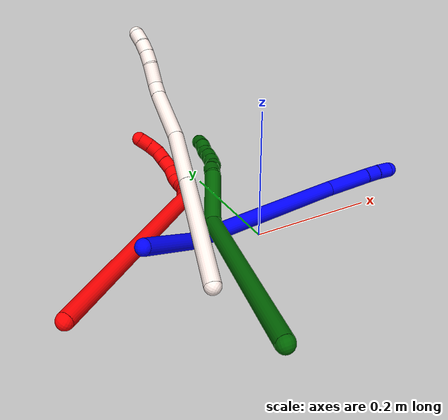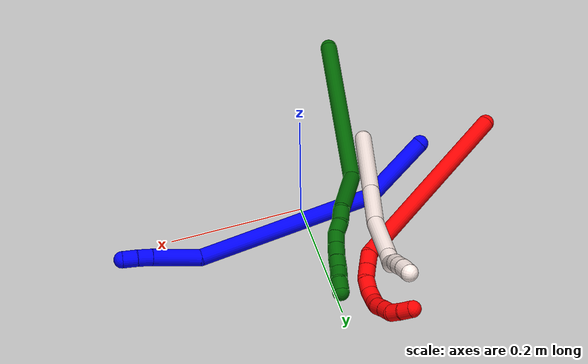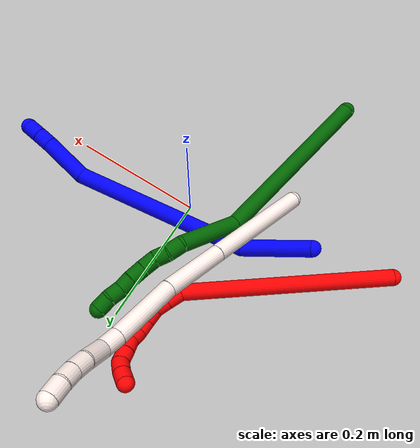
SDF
<sdf version="1.7">
 <world name="default">
  <model name="1">
   <static>0</static>
   <link name="1">
    <collision name="collision-cylinder-e_1_1_4">
     <pose>0.047607 0.022094 0.013996 -1.00615 1.06844 -0.629468</pose>
     <geometry><cylinder><radius>0.0125</radius><length>0.108637</length></cylinder></geometry>
     <surface>
      <friction><ode><mu>1.16</mu><mu2>1.16</mu2><slip1>0</slip1><slip2>0</slip2></ode></friction>
      <contact><ode><kp>1e+06</kp><kd>1</kd><max_vel>0</max_vel><min_depth>0.001</min_depth></ode></contact>
     </surface>
    </collision>
    <visual name="visual-cylinder-e_1_1_4">
     <pose>0.047607 0.022094 0.013996 -1.00615 1.06844 -0.629468</pose>
     <geometry><cylinder><radius>0.0125</radius><length>0.108637</length></cylinder></geometry>
     <material><ambient>0 0 1 1</ambient></material>
    </visual>
    <collision name="collision-cylinder-e_2_4_5">
     <pose>0.231479 0.05717 0.013782 -2.40131 1.43048 -2.30141</pose>
     <geometry><cylinder><radius>0.0125</radius><length>0.275234</length></cylinder></geometry>
     <surface>
      <friction><ode><mu>1.16</mu><mu2>1.16</mu2><slip1>0</slip1><slip2>0</slip2></ode></friction>
      <contact><ode><kp>1e+06</kp><kd>1</kd><max_vel>0</max_vel><min_depth>0.001</min_depth></ode></contact>
     </surface>
    </collision>
    <visual name="visual-cylinder-e_2_4_5">
     <pose>0.231479 0.05717 0.013782 -2.40131 1.43048 -2.30141</pose>
     <geometry><cylinder><radius>0.0125</radius><length>0.275234</length></cylinder></geometry>
     <material><ambient>0 0 1 1</ambient></material>
    </visual>
    <collision name="collision-cylinder-e_3_5_6">
     <pose>0.400333 0.069158 -0.015566 3.07604 1.13511 3.03882</pose>
     <geometry><cylinder><radius>0.0125</radius><length>0.071896</length></cylinder></geometry>
     <surface>
      <friction><ode><mu>1.16</mu><mu2>1.16</mu2><slip1>0</slip1><slip2>0</slip2></ode></friction>
      <contact><ode><kp>1e+06</kp><kd>1</kd><max_vel>0</max_vel><min_depth>0.001</min_depth></ode></contact>
     </surface>
    </collision>
    <visual name="visual-cylinder-e_3_5_6">
     <pose>0.400333 0.069158 -0.015566 3.07604 1.13511 3.03882</pose>
     <geometry><cylinder><radius>0.0125</radius><length>0.071896</length></cylinder></geometry>
     <material><ambient>0 0 1 1</ambient></material>
    </visual>
    <collision name="collision-cylinder-e_4_6_7">
     <pose>0.443159 0.068278 -0.03479 -3.11373 1.19096 -3.10046</pose>
     <geometry><cylinder><radius>0.0125</radius><length>0.022044</length></cylinder></geometry>
     <surface>
      <friction><ode><mu>1.16</mu><mu2>1.16</mu2><slip1>0</slip1><slip2>0</slip2></ode></friction>
      <contact><ode><kp>1e+06</kp><kd>1</kd><max_vel>0</max_vel><min_depth>0.001</min_depth></ode></contact>
     </surface>
    </collision>
    <visual name="visual-cylinder-e_4_6_7">
     <pose>0.443159 0.068278 -0.03479 -3.11373 1.19096 -3.10046</pose>
     <geometry><cylinder><radius>0.0125</radius><length>0.022044</length></cylinder></geometry>
     <material><ambient>0 0 1 1</ambient></material>
    </visual>
    <collision name="collision-cylinder-e_5_7_2">
     <pose>0.463685 0.069507 -0.042871 -2.86958 1.18755 -2.74155</pose>
     <geometry><cylinder><radius>0.0125</radius><length>0.02219</length></cylinder></geometry>
     <surface>
      <friction><ode><mu>1.16</mu><mu2>1.16</mu2><slip1>0</slip1><slip2>0</slip2></ode></friction>
      <contact><ode><kp>1e+06</kp><kd>1</kd><max_vel>0</max_vel><min_depth>0.001</min_depth></ode></contact>
     </surface>
    </collision>
    <visual name="visual-cylinder-e_5_7_2">
     <pose>0.463685 0.069507 -0.042871 -2.86958 1.18755 -2.74155</pose>
     <geometry><cylinder><radius>0.0125</radius><length>0.02219</length></cylinder></geometry>
     <material><ambient>0 0 1 1</ambient></material>
    </visual>
    <collision name="collision-sphere-2">
     <pose>0.473975 0.070621 -0.046867 0 -0 0</pose>
     <geometry><sphere><radius>0.0125</radius></sphere></geometry>
     <surface>
      <friction><ode><mu>1.16</mu><mu2>1.16</mu2><slip1>0</slip1><slip2>0</slip2></ode></friction>
      <contact><ode><kp>1e+06</kp><kd>1</kd><max_vel>0</max_vel><min_depth>0.001</min_depth></ode></contact>
     </surface>
    </collision>
    <visual name="visual-sphere-2">
     <pose>0.473975 0.070621 -0.046867 0 -0 0</pose>
     <geometry><sphere><radius>0.0125</radius></sphere></geometry>
     <material><ambient>0 0 1 1</ambient></material>
    </visual>
    <collision name="collision-sphere-7">
     <pose>0.453395 0.068392 -0.038875 0 -0 0</pose>
     <geometry><sphere><radius>0.0125</radius></sphere></geometry>
     <surface>
      <friction><ode><mu>1.16</mu><mu2>1.16</mu2><slip1>0</slip1><slip2>0</slip2></ode></friction>
      <contact><ode><kp>1e+06</kp><kd>1</kd><max_vel>0</max_vel><min_depth>0.001</min_depth></ode></contact>
     </surface>
    </collision>
    <visual name="visual-sphere-7">
     <pose>0.453395 0.068392 -0.038875 0 -0 0</pose>
     <geometry><sphere><radius>0.0125</radius></sphere></geometry>
     <material><ambient>0 0 1 1</ambient></material>
    </visual>
    <collision name="collision-sphere-6">
     <pose>0.432923 0.068164 -0.030705 0 -0 0</pose>
     <geometry><sphere><radius>0.0125</radius></sphere></geometry>
     <surface>
      <friction><ode><mu>1.16</mu><mu2>1.16</mu2><slip1>0</slip1><slip2>0</slip2></ode></friction>
      <contact><ode><kp>1e+06</kp><kd>1</kd><max_vel>0</max_vel><min_depth>0.001</min_depth></ode></contact>
     </surface>
    </collision>
    <visual name="visual-sphere-6">
     <pose>0.432923 0.068164 -0.030705 0 -0 0</pose>
     <geometry><sphere><radius>0.0125</radius></sphere></geometry>
     <material><ambient>0 0 1 1</ambient></material>
    </visual>
    <collision name="collision-sphere-5">
     <pose>0.367744 0.070152 -0.000427 0 -0 0</pose>
     <geometry><sphere><radius>0.0125</radius></sphere></geometry>
     <surface>
      <friction><ode><mu>1.16</mu><mu2>1.16</mu2><slip1>0</slip1><slip2>0</slip2></ode></friction>
      <contact><ode><kp>1e+06</kp><kd>1</kd><max_vel>0</max_vel><min_depth>0.001</min_depth></ode></contact>
     </surface>
    </collision>
    <visual name="visual-sphere-5">
     <pose>0.367744 0.070152 -0.000427 0 -0 0</pose>
     <geometry><sphere><radius>0.0125</radius></sphere></geometry>
     <material><ambient>0 0 1 1</ambient></material>
    </visual>
    <collision name="collision-sphere-1">
     <geometry><sphere><radius>0.0125</radius></sphere></geometry>
     <surface>
      <friction><ode><mu>1.16</mu><mu2>1.16</mu2><slip1>0</slip1><slip2>0</slip2></ode></friction>
      <contact><ode><kp>1e+06</kp><kd>1</kd><max_vel>0</max_vel><min_depth>0.001</min_depth></ode></contact>
     </surface>
    </collision>
    <visual name="visual-sphere-1">
     <geometry><sphere><radius>0.0125</radius></sphere></geometry>
     <material><ambient>0 0 1 1</ambient></material>
    </visual>
    <collision name="collision-sphere-4">
     <pose>0.095215 0.044189 0.027991 0 -0 0</pose>
     <geometry><sphere><radius>0.0125</radius></sphere></geometry>
     <surface>
      <friction><ode><mu>1.16</mu><mu2>1.16</mu2><slip1>0</slip1><slip2>0</slip2></ode></friction>
      <contact><ode><kp>1e+06</kp><kd>1</kd><max_vel>0</max_vel><min_depth>0.001</min_depth></ode></contact>
     </surface>
    </collision>
    <visual name="visual-sphere-4">
     <pose>0.095215 0.044189 0.027991 0 -0 0</pose>
     <geometry><sphere><radius>0.0125</radius></sphere></geometry>
     <material><ambient>0 0 1 1</ambient></material>
    </visual>
    <inertial>
     <pose>0.235446 0.05231 0.004953 0 -0 0</pose>
     <mass>0.5</mass>
     <inertia>
      <ixx>-0.000311</ixx>
      <ixy>0</ixy>
      <ixz>0</ixz>
      <iyy>0.001658</iyy>
      <iyz>0</iyz>
      <izz>-0.002075</izz>
     </inertia>
    </inertial>
   </link>
   <pose>-0.194495 -0.024277 0.05401 -1.79337 -0.069787 0.243586</pose>
  </model>
  <model name="2">
   <static>0</static>
   <link name="2">
    <collision name="collision-cylinder-e_1_1_4">
     <pose>0.089903 0.109008 0.067376 -1.01719 0.611769 -0.348548</pose>
     <geometry><cylinder><radius>0.0125</radius><length>0.31308</length></cylinder></geometry>
     <surface>
      <friction><ode><mu>1.16</mu><mu2>1.16</mu2><slip1>0</slip1><slip2>0</slip2></ode></friction>
      <contact><ode><kp>1e+06</kp><kd>1</kd><max_vel>0</max_vel><min_depth>0.001</min_depth></ode></contact>
     </surface>
    </collision>
    <visual name="visual-cylinder-e_1_1_4">
     <pose>0.089903 0.109008 0.067376 -1.01719 0.611769 -0.348548</pose>
     <geometry><cylinder><radius>0.0125</radius><length>0.31308</length></cylinder></geometry>
     <material><ambient>1 0 0 1</ambient></material>
    </visual>
    <collision name="collision-cylinder-e_2_4_5">
     <pose>0.183748 0.229125 0.135699 -1.48568 0.339775 -0.312487</pose>
     <geometry><cylinder><radius>0.0125</radius><length>0.023652</length></cylinder></geometry>
     <surface>
      <friction><ode><mu>1.16</mu><mu2>1.16</mu2><slip1>0</slip1><slip2>0</slip2></ode></friction>
      <contact><ode><kp>1e+06</kp><kd>1</kd><max_vel>0</max_vel><min_depth>0.001</min_depth></ode></contact>
     </surface>
    </collision>
    <visual name="visual-cylinder-e_2_4_5">
     <pose>0.183748 0.229125 0.135699 -1.48568 0.339775 -0.312487</pose>
     <geometry><cylinder><radius>0.0125</radius><length>0.023652</length></cylinder></geometry>
     <material><ambient>1 0 0 1</ambient></material>
    </visual>
    <collision name="collision-cylinder-e_3_5_6">
     <pose>0.190829 0.249921 0.137514 -1.4816 0.312208 -0.285912</pose>
     <geometry><cylinder><radius>0.0125</radius><length>0.020439</length></cylinder></geometry>
     <surface>
      <friction><ode><mu>1.16</mu><mu2>1.16</mu2><slip1>0</slip1><slip2>0</slip2></ode></friction>
      <contact><ode><kp>1e+06</kp><kd>1</kd><max_vel>0</max_vel><min_depth>0.001</min_depth></ode></contact>
     </surface>
    </collision>
    <visual name="visual-cylinder-e_3_5_6">
     <pose>0.190829 0.249921 0.137514 -1.4816 0.312208 -0.285912</pose>
     <geometry><cylinder><radius>0.0125</radius><length>0.020439</length></cylinder></geometry>
     <material><ambient>1 0 0 1</ambient></material>
    </visual>
    <collision name="collision-cylinder-e_4_6_7">
     <pose>0.195257 0.269668 0.136068 -1.79666 0.124285 -0.155967</pose>
     <geometry><cylinder><radius>0.0125</radius><length>0.020804</length></cylinder></geometry>
     <surface>
      <friction><ode><mu>1.16</mu><mu2>1.16</mu2><slip1>0</slip1><slip2>0</slip2></ode></friction>
      <contact><ode><kp>1e+06</kp><kd>1</kd><max_vel>0</max_vel><min_depth>0.001</min_depth></ode></contact>
     </surface>
    </collision>
    <visual name="visual-cylinder-e_4_6_7">
     <pose>0.195257 0.269668 0.136068 -1.79666 0.124285 -0.155967</pose>
     <geometry><cylinder><radius>0.0125</radius><length>0.020804</length></cylinder></geometry>
     <material><ambient>1 0 0 1</ambient></material>
    </visual>
    <collision name="collision-cylinder-e_5_7_8">
     <pose>0.194726 0.290175 0.133896 -1.55744 -0.172497 0.17022</pose>
     <geometry><cylinder><radius>0.0125</radius><length>0.021211</length></cylinder></geometry>
     <surface>
      <friction><ode><mu>1.16</mu><mu2>1.16</mu2><slip1>0</slip1><slip2>0</slip2></ode></friction>
      <contact><ode><kp>1e+06</kp><kd>1</kd><max_vel>0</max_vel><min_depth>0.001</min_depth></ode></contact>
     </surface>
    </collision>
    <visual name="visual-cylinder-e_5_7_8">
     <pose>0.194726 0.290175 0.133896 -1.55744 -0.172497 0.17022</pose>
     <geometry><cylinder><radius>0.0125</radius><length>0.021211</length></cylinder></geometry>
     <material><ambient>1 0 0 1</ambient></material>
    </visual>
    <collision name="collision-cylinder-e_6_8_9">
     <pose>0.189523 0.309434 0.137608 -1.18575 -0.341835 0.231533</pose>
     <geometry><cylinder><radius>0.0125</radius><length>0.020186</length></cylinder></geometry>
     <surface>
      <friction><ode><mu>1.16</mu><mu2>1.16</mu2><slip1>0</slip1><slip2>0</slip2></ode></friction>
      <contact><ode><kp>1e+06</kp><kd>1</kd><max_vel>0</max_vel><min_depth>0.001</min_depth></ode></contact>
     </surface>
    </collision>
    <visual name="visual-cylinder-e_6_8_9">
     <pose>0.189523 0.309434 0.137608 -1.18575 -0.341835 0.231533</pose>
     <geometry><cylinder><radius>0.0125</radius><length>0.020186</length></cylinder></geometry>
     <material><ambient>1 0 0 1</ambient></material>
    </visual>
    <collision name="collision-cylinder-e_7_9_10">
     <pose>0.180032 0.326305 0.143135 -1.33265 -0.634855 0.505598</pose>
     <geometry><cylinder><radius>0.0125</radius><length>0.020598</length></cylinder></geometry>
     <surface>
      <friction><ode><mu>1.16</mu><mu2>1.16</mu2><slip1>0</slip1><slip2>0</slip2></ode></friction>
      <contact><ode><kp>1e+06</kp><kd>1</kd><max_vel>0</max_vel><min_depth>0.001</min_depth></ode></contact>
     </surface>
    </collision>
    <visual name="visual-cylinder-e_7_9_10">
     <pose>0.180032 0.326305 0.143135 -1.33265 -0.634855 0.505598</pose>
     <geometry><cylinder><radius>0.0125</radius><length>0.020598</length></cylinder></geometry>
     <material><ambient>1 0 0 1</ambient></material>
    </visual>
    <collision name="collision-cylinder-e_8_10_11">
     <pose>0.168572 0.34261 0.146968 -1.34709 -0.564198 0.454595</pose>
     <geometry><cylinder><radius>0.0125</radius><length>0.020018</length></cylinder></geometry>
     <surface>
      <friction><ode><mu>1.16</mu><mu2>1.16</mu2><slip1>0</slip1><slip2>0</slip2></ode></friction>
      <contact><ode><kp>1e+06</kp><kd>1</kd><max_vel>0</max_vel><min_depth>0.001</min_depth></ode></contact>
     </surface>
    </collision>
    <visual name="visual-cylinder-e_8_10_11">
     <pose>0.168572 0.34261 0.146968 -1.34709 -0.564198 0.454595</pose>
     <geometry><cylinder><radius>0.0125</radius><length>0.020018</length></cylinder></geometry>
     <material><ambient>1 0 0 1</ambient></material>
    </visual>
    <collision name="collision-cylinder-e_9_11_12">
     <pose>0.154483 0.355695 0.14942 -1.45219 -1.0621 0.961392</pose>
     <geometry><cylinder><radius>0.0125</radius><length>0.020007</length></cylinder></geometry>
     <surface>
      <friction><ode><mu>1.16</mu><mu2>1.16</mu2><slip1>0</slip1><slip2>0</slip2></ode></friction>
      <contact><ode><kp>1e+06</kp><kd>1</kd><max_vel>0</max_vel><min_depth>0.001</min_depth></ode></contact>
     </surface>
    </collision>
    <visual name="visual-cylinder-e_9_11_12">
     <pose>0.154483 0.355695 0.14942 -1.45219 -1.0621 0.961392</pose>
     <geometry><cylinder><radius>0.0125</radius><length>0.020007</length></cylinder></geometry>
     <material><ambient>1 0 0 1</ambient></material>
    </visual>
    <collision name="collision-cylinder-e_10_12_2">
     <pose>0.136498 0.36434 0.149811 -1.61971 -1.17988 1.22553</pose>
     <geometry><cylinder><radius>0.0125</radius><length>0.020006</length></cylinder></geometry>
     <surface>
      <friction><ode><mu>1.16</mu><mu2>1.16</mu2><slip1>0</slip1><slip2>0</slip2></ode></friction>
      <contact><ode><kp>1e+06</kp><kd>1</kd><max_vel>0</max_vel><min_depth>0.001</min_depth></ode></contact>
     </surface>
    </collision>
    <visual name="visual-cylinder-e_10_12_2">
     <pose>0.136498 0.36434 0.149811 -1.61971 -1.17988 1.22553</pose>
     <geometry><cylinder><radius>0.0125</radius><length>0.020006</length></cylinder></geometry>
     <material><ambient>1 0 0 1</ambient></material>
    </visual>
    <collision name="collision-sphere-2">
     <pose>0.12725 0.368147 0.149624 0 -0 0</pose>
     <geometry><sphere><radius>0.0125</radius></sphere></geometry>
     <surface>
      <friction><ode><mu>1.16</mu><mu2>1.16</mu2><slip1>0</slip1><slip2>0</slip2></ode></friction>
      <contact><ode><kp>1e+06</kp><kd>1</kd><max_vel>0</max_vel><min_depth>0.001</min_depth></ode></contact>
     </surface>
    </collision>
    <visual name="visual-sphere-2">
     <pose>0.12725 0.368147 0.149624 0 -0 0</pose>
     <geometry><sphere><radius>0.0125</radius></sphere></geometry>
     <material><ambient>1 0 0 1</ambient></material>
    </visual>
    <collision name="collision-sphere-12">
     <pose>0.145746 0.360533 0.149997 0 -0 0</pose>
     <geometry><sphere><radius>0.0125</radius></sphere></geometry>
     <surface>
      <friction><ode><mu>1.16</mu><mu2>1.16</mu2><slip1>0</slip1><slip2>0</slip2></ode></friction>
      <contact><ode><kp>1e+06</kp><kd>1</kd><max_vel>0</max_vel><min_depth>0.001</min_depth></ode></contact>
     </surface>
    </collision>
    <visual name="visual-sphere-12">
     <pose>0.145746 0.360533 0.149997 0 -0 0</pose>
     <geometry><sphere><radius>0.0125</radius></sphere></geometry>
     <material><ambient>1 0 0 1</ambient></material>
    </visual>
    <collision name="collision-sphere-11">
     <pose>0.163219 0.350857 0.148844 0 -0 0</pose>
     <geometry><sphere><radius>0.0125</radius></sphere></geometry>
     <surface>
      <friction><ode><mu>1.16</mu><mu2>1.16</mu2><slip1>0</slip1><slip2>0</slip2></ode></friction>
      <contact><ode><kp>1e+06</kp><kd>1</kd><max_vel>0</max_vel><min_depth>0.001</min_depth></ode></contact>
     </surface>
    </collision>
    <visual name="visual-sphere-11">
     <pose>0.163219 0.350857 0.148844 0 -0 0</pose>
     <geometry><sphere><radius>0.0125</radius></sphere></geometry>
     <material><ambient>1 0 0 1</ambient></material>
    </visual>
    <collision name="collision-sphere-10">
     <pose>0.173924 0.334363 0.145091 0 -0 0</pose>
     <geometry><sphere><radius>0.0125</radius></sphere></geometry>
     <surface>
      <friction><ode><mu>1.16</mu><mu2>1.16</mu2><slip1>0</slip1><slip2>0</slip2></ode></friction>
      <contact><ode><kp>1e+06</kp><kd>1</kd><max_vel>0</max_vel><min_depth>0.001</min_depth></ode></contact>
     </surface>
    </collision>
    <visual name="visual-sphere-10">
     <pose>0.173924 0.334363 0.145091 0 -0 0</pose>
     <geometry><sphere><radius>0.0125</radius></sphere></geometry>
     <material><ambient>1 0 0 1</ambient></material>
    </visual>
    <collision name="collision-sphere-9">
     <pose>0.186139 0.318247 0.141179 0 -0 0</pose>
     <geometry><sphere><radius>0.0125</radius></sphere></geometry>
     <surface>
      <friction><ode><mu>1.16</mu><mu2>1.16</mu2><slip1>0</slip1><slip2>0</slip2></ode></friction>
      <contact><ode><kp>1e+06</kp><kd>1</kd><max_vel>0</max_vel><min_depth>0.001</min_depth></ode></contact>
     </surface>
    </collision>
    <visual name="visual-sphere-9">
     <pose>0.186139 0.318247 0.141179 0 -0 0</pose>
     <geometry><sphere><radius>0.0125</radius></sphere></geometry>
     <material><ambient>1 0 0 1</ambient></material>
    </visual>
    <collision name="collision-sphere-4">
     <pose>0.179807 0.218015 0.134752 0 -0 0</pose>
     <geometry><sphere><radius>0.0125</radius></sphere></geometry>
     <surface>
      <friction><ode><mu>1.16</mu><mu2>1.16</mu2><slip1>0</slip1><slip2>0</slip2></ode></friction>
      <contact><ode><kp>1e+06</kp><kd>1</kd><max_vel>0</max_vel><min_depth>0.001</min_depth></ode></contact>
     </surface>
    </collision>
    <visual name="visual-sphere-4">
     <pose>0.179807 0.218015 0.134752 0 -0 0</pose>
     <geometry><sphere><radius>0.0125</radius></sphere></geometry>
     <material><ambient>1 0 0 1</ambient></material>
    </visual>
    <collision name="collision-sphere-1">
     <geometry><sphere><radius>0.0125</radius></sphere></geometry>
     <surface>
      <friction><ode><mu>1.16</mu><mu2>1.16</mu2><slip1>0</slip1><slip2>0</slip2></ode></friction>
      <contact><ode><kp>1e+06</kp><kd>1</kd><max_vel>0</max_vel><min_depth>0.001</min_depth></ode></contact>
     </surface>
    </collision>
    <visual name="visual-sphere-1">
     <geometry><sphere><radius>0.0125</radius></sphere></geometry>
     <material><ambient>1 0 0 1</ambient></material>
    </visual>
    <collision name="collision-sphere-8">
     <pose>0.192906 0.300622 0.134036 0 -0 0</pose>
     <geometry><sphere><radius>0.0125</radius></sphere></geometry>
     <surface>
      <friction><ode><mu>1.16</mu><mu2>1.16</mu2><slip1>0</slip1><slip2>0</slip2></ode></friction>
      <contact><ode><kp>1e+06</kp><kd>1</kd><max_vel>0</max_vel><min_depth>0.001</min_depth></ode></contact>
     </surface>
    </collision>
    <visual name="visual-sphere-8">
     <pose>0.192906 0.300622 0.134036 0 -0 0</pose>
     <geometry><sphere><radius>0.0125</radius></sphere></geometry>
     <material><ambient>1 0 0 1</ambient></material>
    </visual>
    <collision name="collision-sphere-5">
     <pose>0.18769 0.240234 0.136647 0 -0 0</pose>
     <geometry><sphere><radius>0.0125</radius></sphere></geometry>
     <surface>
      <friction><ode><mu>1.16</mu><mu2>1.16</mu2><slip1>0</slip1><slip2>0</slip2></ode></friction>
      <contact><ode><kp>1e+06</kp><kd>1</kd><max_vel>0</max_vel><min_depth>0.001</min_depth></ode></contact>
     </surface>
    </collision>
    <visual name="visual-sphere-5">
     <pose>0.18769 0.240234 0.136647 0 -0 0</pose>
     <geometry><sphere><radius>0.0125</radius></sphere></geometry>
     <material><ambient>1 0 0 1</ambient></material>
    </visual>
    <collision name="collision-sphere-6">
     <pose>0.193968 0.259608 0.13838 0 -0 0</pose>
     <geometry><sphere><radius>0.0125</radius></sphere></geometry>
     <surface>
      <friction><ode><mu>1.16</mu><mu2>1.16</mu2><slip1>0</slip1><slip2>0</slip2></ode></friction>
      <contact><ode><kp>1e+06</kp><kd>1</kd><max_vel>0</max_vel><min_depth>0.001</min_depth></ode></contact>
     </surface>
    </collision>
    <visual name="visual-sphere-6">
     <pose>0.193968 0.259608 0.13838 0 -0 0</pose>
     <geometry><sphere><radius>0.0125</radius></sphere></geometry>
     <material><ambient>1 0 0 1</ambient></material>
    </visual>
    <collision name="collision-sphere-7">
     <pose>0.196547 0.279728 0.133757 0 -0 0</pose>
     <geometry><sphere><radius>0.0125</radius></sphere></geometry>
     <surface>
      <friction><ode><mu>1.16</mu><mu2>1.16</mu2><slip1>0</slip1><slip2>0</slip2></ode></friction>
      <contact><ode><kp>1e+06</kp><kd>1</kd><max_vel>0</max_vel><min_depth>0.001</min_depth></ode></contact>
     </surface>
    </collision>
    <visual name="visual-sphere-7">
     <pose>0.196547 0.279728 0.133757 0 -0 0</pose>
     <geometry><sphere><radius>0.0125</radius></sphere></geometry>
     <material><ambient>1 0 0 1</ambient></material>
    </visual>
    <inertial>
     <pose>0.122631 0.181303 0.094879 0 -0 0</pose>
     <mass>0.5</mass>
     <inertia>
      <ixx>0.001281</ixx>
      <ixy>0</ixy>
      <ixz>0</ixz>
      <iyy>0.001015</iyy>
      <iyz>0</iyz>
      <izz>-0.003261</izz>
     </inertia>
    </inertial>
   </link>
   <pose>-0.314949 -0.065169 0.011498 0.062254 0.654776 -0.081423</pose>
  </model>
  <model name="6">
   <static>0</static>
   <link name="6">
    <collision name="collision-cylinder-e_1_1_4">
     <pose>-0.026349 0.086369 0.093247 -0.747125 -0.20441 0.080359</pose>
     <geometry><cylinder><radius>0.0125</radius><length>0.259606</length></cylinder></geometry>
     <surface>
      <friction><ode><mu>1.16</mu><mu2>1.16</mu2><slip1>0</slip1><slip2>0</slip2></ode></friction>
      <contact><ode><kp>1e+06</kp><kd>1</kd><max_vel>0</max_vel><min_depth>0.001</min_depth></ode></contact>
     </surface>
    </collision>
    <visual name="visual-cylinder-e_1_1_4">
     <pose>-0.026349 0.086369 0.093247 -0.747125 -0.20441 0.080359</pose>
     <geometry><cylinder><radius>0.0125</radius><length>0.259606</length></cylinder></geometry>
     <material><ambient>0 0.392157 0.003922 1</ambient></material>
    </visual>
    <collision name="collision-cylinder-e_2_4_5">
     <pose>-0.043454 0.195323 0.226228 -0.516852 0.199555 -0.052913</pose>
     <geometry><cylinder><radius>0.0125</radius><length>0.093258</length></cylinder></geometry>
     <surface>
      <friction><ode><mu>1.16</mu><mu2>1.16</mu2><slip1>0</slip1><slip2>0</slip2></ode></friction>
      <contact><ode><kp>1e+06</kp><kd>1</kd><max_vel>0</max_vel><min_depth>0.001</min_depth></ode></contact>
     </surface>
    </collision>
    <visual name="visual-cylinder-e_2_4_5">
     <pose>-0.043454 0.195323 0.226228 -0.516852 0.199555 -0.052913</pose>
     <geometry><cylinder><radius>0.0125</radius><length>0.093258</length></cylinder></geometry>
     <material><ambient>0 0.392157 0.003922 1</ambient></material>
    </visual>
    <collision name="collision-cylinder-e_3_5_6">
     <pose>-0.034313 0.226451 0.273592 -0.841819 -0.00893 0.003997</pose>
     <geometry><cylinder><radius>0.0125</radius><length>0.02291</length></cylinder></geometry>
     <surface>
      <friction><ode><mu>1.16</mu><mu2>1.16</mu2><slip1>0</slip1><slip2>0</slip2></ode></friction>
      <contact><ode><kp>1e+06</kp><kd>1</kd><max_vel>0</max_vel><min_depth>0.001</min_depth></ode></contact>
     </surface>
    </collision>
    <visual name="visual-cylinder-e_3_5_6">
     <pose>-0.034313 0.226451 0.273592 -0.841819 -0.00893 0.003997</pose>
     <geometry><cylinder><radius>0.0125</radius><length>0.02291</length></cylinder></geometry>
     <material><ambient>0 0.392157 0.003922 1</ambient></material>
    </visual>
    <collision name="collision-cylinder-e_4_6_7">
     <pose>-0.033063 0.243824 0.285778 -1.09446 0.135269 -0.082498</pose>
     <geometry><cylinder><radius>0.0125</radius><length>0.020055</length></cylinder></geometry>
     <surface>
      <friction><ode><mu>1.16</mu><mu2>1.16</mu2><slip1>0</slip1><slip2>0</slip2></ode></friction>
      <contact><ode><kp>1e+06</kp><kd>1</kd><max_vel>0</max_vel><min_depth>0.001</min_depth></ode></contact>
     </surface>
    </collision>
    <visual name="visual-cylinder-e_4_6_7">
     <pose>-0.033063 0.243824 0.285778 -1.09446 0.135269 -0.082498</pose>
     <geometry><cylinder><radius>0.0125</radius><length>0.020055</length></cylinder></geometry>
     <material><ambient>0 0.392157 0.003922 1</ambient></material>
    </visual>
    <collision name="collision-cylinder-e_5_7_8">
     <pose>-0.032753 0.260493 0.297539 -0.827526 -0.097556 0.042865</pose>
     <geometry><cylinder><radius>0.0125</radius><length>0.021398</length></cylinder></geometry>
     <surface>
      <friction><ode><mu>1.16</mu><mu2>1.16</mu2><slip1>0</slip1><slip2>0</slip2></ode></friction>
      <contact><ode><kp>1e+06</kp><kd>1</kd><max_vel>0</max_vel><min_depth>0.001</min_depth></ode></contact>
     </surface>
    </collision>
    <visual name="visual-cylinder-e_5_7_8">
     <pose>-0.032753 0.260493 0.297539 -0.827526 -0.097556 0.042865</pose>
     <geometry><cylinder><radius>0.0125</radius><length>0.021398</length></cylinder></geometry>
     <material><ambient>0 0.392157 0.003922 1</ambient></material>
    </visual>
    <collision name="collision-cylinder-e_6_8_9">
     <pose>-0.035353 0.27622 0.312044 -0.824024 -0.14402 0.063028</pose>
     <geometry><cylinder><radius>0.0125</radius><length>0.021717</length></cylinder></geometry>
     <surface>
      <friction><ode><mu>1.16</mu><mu2>1.16</mu2><slip1>0</slip1><slip2>0</slip2></ode></friction>
      <contact><ode><kp>1e+06</kp><kd>1</kd><max_vel>0</max_vel><min_depth>0.001</min_depth></ode></contact>
     </surface>
    </collision>
    <visual name="visual-cylinder-e_6_8_9">
     <pose>-0.035353 0.27622 0.312044 -0.824024 -0.14402 0.063028</pose>
     <geometry><cylinder><radius>0.0125</radius><length>0.021717</length></cylinder></geometry>
     <material><ambient>0 0.392157 0.003922 1</ambient></material>
    </visual>
    <collision name="collision-cylinder-e_7_9_10">
     <pose>-0.039224 0.291398 0.325825 -0.844186 -0.232675 0.104869</pose>
     <geometry><cylinder><radius>0.0125</radius><length>0.020053</length></cylinder></geometry>
     <surface>
      <friction><ode><mu>1.16</mu><mu2>1.16</mu2><slip1>0</slip1><slip2>0</slip2></ode></friction>
      <contact><ode><kp>1e+06</kp><kd>1</kd><max_vel>0</max_vel><min_depth>0.001</min_depth></ode></contact>
     </surface>
    </collision>
    <visual name="visual-cylinder-e_7_9_10">
     <pose>-0.039224 0.291398 0.325825 -0.844186 -0.232675 0.104869</pose>
     <geometry><cylinder><radius>0.0125</radius><length>0.020053</length></cylinder></geometry>
     <material><ambient>0 0.392157 0.003922 1</ambient></material>
    </visual>
    <collision name="collision-cylinder-e_8_10_11">
     <pose>-0.042115 0.30487 0.340555 -0.643001 -0.05614 0.018702</pose>
     <geometry><cylinder><radius>0.0125</radius><length>0.020646</length></cylinder></geometry>
     <surface>
      <friction><ode><mu>1.16</mu><mu2>1.16</mu2><slip1>0</slip1><slip2>0</slip2></ode></friction>
      <contact><ode><kp>1e+06</kp><kd>1</kd><max_vel>0</max_vel><min_depth>0.001</min_depth></ode></contact>
     </surface>
    </collision>
    <visual name="visual-cylinder-e_8_10_11">
     <pose>-0.042115 0.30487 0.340555 -0.643001 -0.05614 0.018702</pose>
     <geometry><cylinder><radius>0.0125</radius><length>0.020646</length></cylinder></geometry>
     <material><ambient>0 0.392157 0.003922 1</ambient></material>
    </visual>
    <collision name="collision-cylinder-e_9_11_2">
     <pose>-0.045125 0.318523 0.355272 -0.857368 -0.2412 0.11066</pose>
     <geometry><cylinder><radius>0.0125</radius><length>0.020357</length></cylinder></geometry>
     <surface>
      <friction><ode><mu>1.16</mu><mu2>1.16</mu2><slip1>0</slip1><slip2>0</slip2></ode></friction>
      <contact><ode><kp>1e+06</kp><kd>1</kd><max_vel>0</max_vel><min_depth>0.001</min_depth></ode></contact>
     </surface>
    </collision>
    <visual name="visual-cylinder-e_9_11_2">
     <pose>-0.045125 0.318523 0.355272 -0.857368 -0.2412 0.11066</pose>
     <geometry><cylinder><radius>0.0125</radius><length>0.020357</length></cylinder></geometry>
     <material><ambient>0 0.392157 0.003922 1</ambient></material>
    </visual>
    <collision name="collision-sphere-2">
     <pose>-0.047556 0.325996 0.36174 0 -0 0</pose>
     <geometry><sphere><radius>0.0125</radius></sphere></geometry>
     <surface>
      <friction><ode><mu>1.16</mu><mu2>1.16</mu2><slip1>0</slip1><slip2>0</slip2></ode></friction>
      <contact><ode><kp>1e+06</kp><kd>1</kd><max_vel>0</max_vel><min_depth>0.001</min_depth></ode></contact>
     </surface>
    </collision>
    <visual name="visual-sphere-2">
     <pose>-0.047556 0.325996 0.36174 0 -0 0</pose>
     <geometry><sphere><radius>0.0125</radius></sphere></geometry>
     <material><ambient>0 0.392157 0.003922 1</ambient></material>
    </visual>
    <collision name="collision-sphere-11">
     <pose>-0.042694 0.31105 0.348803 0 -0 0</pose>
     <geometry><sphere><radius>0.0125</radius></sphere></geometry>
     <surface>
      <friction><ode><mu>1.16</mu><mu2>1.16</mu2><slip1>0</slip1><slip2>0</slip2></ode></friction>
      <contact><ode><kp>1e+06</kp><kd>1</kd><max_vel>0</max_vel><min_depth>0.001</min_depth></ode></contact>
     </surface>
    </collision>
    <visual name="visual-sphere-11">
     <pose>-0.042694 0.31105 0.348803 0 -0 0</pose>
     <geometry><sphere><radius>0.0125</radius></sphere></geometry>
     <material><ambient>0 0.392157 0.003922 1</ambient></material>
    </visual>
    <collision name="collision-sphere-10">
     <pose>-0.041535 0.29869 0.332307 0 -0 0</pose>
     <geometry><sphere><radius>0.0125</radius></sphere></geometry>
     <surface>
      <friction><ode><mu>1.16</mu><mu2>1.16</mu2><slip1>0</slip1><slip2>0</slip2></ode></friction>
      <contact><ode><kp>1e+06</kp><kd>1</kd><max_vel>0</max_vel><min_depth>0.001</min_depth></ode></contact>
     </surface>
    </collision>
    <visual name="visual-sphere-10">
     <pose>-0.041535 0.29869 0.332307 0 -0 0</pose>
     <geometry><sphere><radius>0.0125</radius></sphere></geometry>
     <material><ambient>0 0.392157 0.003922 1</ambient></material>
    </visual>
    <collision name="collision-sphere-9">
     <pose>-0.036912 0.284106 0.319344 0 -0 0</pose>
     <geometry><sphere><radius>0.0125</radius></sphere></geometry>
     <surface>
      <friction><ode><mu>1.16</mu><mu2>1.16</mu2><slip1>0</slip1><slip2>0</slip2></ode></friction>
      <contact><ode><kp>1e+06</kp><kd>1</kd><max_vel>0</max_vel><min_depth>0.001</min_depth></ode></contact>
     </surface>
    </collision>
    <visual name="visual-sphere-9">
     <pose>-0.036912 0.284106 0.319344 0 -0 0</pose>
     <geometry><sphere><radius>0.0125</radius></sphere></geometry>
     <material><ambient>0 0.392157 0.003922 1</ambient></material>
    </visual>
    <collision name="collision-sphere-4">
     <pose>-0.052697 0.172738 0.186494 0 -0 0</pose>
     <geometry><sphere><radius>0.0125</radius></sphere></geometry>
     <surface>
      <friction><ode><mu>1.16</mu><mu2>1.16</mu2><slip1>0</slip1><slip2>0</slip2></ode></friction>
      <contact><ode><kp>1e+06</kp><kd>1</kd><max_vel>0</max_vel><min_depth>0.001</min_depth></ode></contact>
     </surface>
    </collision>
    <visual name="visual-sphere-4">
     <pose>-0.052697 0.172738 0.186494 0 -0 0</pose>
     <geometry><sphere><radius>0.0125</radius></sphere></geometry>
     <material><ambient>0 0.392157 0.003922 1</ambient></material>
    </visual>
    <collision name="collision-sphere-1">
     <geometry><sphere><radius>0.0125</radius></sphere></geometry>
     <surface>
      <friction><ode><mu>1.16</mu><mu2>1.16</mu2><slip1>0</slip1><slip2>0</slip2></ode></friction>
      <contact><ode><kp>1e+06</kp><kd>1</kd><max_vel>0</max_vel><min_depth>0.001</min_depth></ode></contact>
     </surface>
    </collision>
    <visual name="visual-sphere-1">
     <geometry><sphere><radius>0.0125</radius></sphere></geometry>
     <material><ambient>0 0.392157 0.003922 1</ambient></material>
    </visual>
    <collision name="collision-sphere-8">
     <pose>-0.033795 0.268333 0.304745 0 -0 0</pose>
     <geometry><sphere><radius>0.0125</radius></sphere></geometry>
     <surface>
      <friction><ode><mu>1.16</mu><mu2>1.16</mu2><slip1>0</slip1><slip2>0</slip2></ode></friction>
      <contact><ode><kp>1e+06</kp><kd>1</kd><max_vel>0</max_vel><min_depth>0.001</min_depth></ode></contact>
     </surface>
    </collision>
    <visual name="visual-sphere-8">
     <pose>-0.033795 0.268333 0.304745 0 -0 0</pose>
     <geometry><sphere><radius>0.0125</radius></sphere></geometry>
     <material><ambient>0 0.392157 0.003922 1</ambient></material>
    </visual>
    <collision name="collision-sphere-5">
     <pose>-0.03421 0.217907 0.265962 0 -0 0</pose>
     <geometry><sphere><radius>0.0125</radius></sphere></geometry>
     <surface>
      <friction><ode><mu>1.16</mu><mu2>1.16</mu2><slip1>0</slip1><slip2>0</slip2></ode></friction>
      <contact><ode><kp>1e+06</kp><kd>1</kd><max_vel>0</max_vel><min_depth>0.001</min_depth></ode></contact>
     </surface>
    </collision>
    <visual name="visual-sphere-5">
     <pose>-0.03421 0.217907 0.265962 0 -0 0</pose>
     <geometry><sphere><radius>0.0125</radius></sphere></geometry>
     <material><ambient>0 0.392157 0.003922 1</ambient></material>
    </visual>
    <collision name="collision-sphere-6">
     <pose>-0.034415 0.234994 0.281222 0 -0 0</pose>
     <geometry><sphere><radius>0.0125</radius></sphere></geometry>
     <surface>
      <friction><ode><mu>1.16</mu><mu2>1.16</mu2><slip1>0</slip1><slip2>0</slip2></ode></friction>
      <contact><ode><kp>1e+06</kp><kd>1</kd><max_vel>0</max_vel><min_depth>0.001</min_depth></ode></contact>
     </surface>
    </collision>
    <visual name="visual-sphere-6">
     <pose>-0.034415 0.234994 0.281222 0 -0 0</pose>
     <geometry><sphere><radius>0.0125</radius></sphere></geometry>
     <material><ambient>0 0.392157 0.003922 1</ambient></material>
    </visual>
    <collision name="collision-sphere-7">
     <pose>-0.031711 0.252653 0.290333 0 -0 0</pose>
     <geometry><sphere><radius>0.0125</radius></sphere></geometry>
     <surface>
      <friction><ode><mu>1.16</mu><mu2>1.16</mu2><slip1>0</slip1><slip2>0</slip2></ode></friction>
      <contact><ode><kp>1e+06</kp><kd>1</kd><max_vel>0</max_vel><min_depth>0.001</min_depth></ode></contact>
     </surface>
    </collision>
    <visual name="visual-sphere-7">
     <pose>-0.031711 0.252653 0.290333 0 -0 0</pose>
     <geometry><sphere><radius>0.0125</radius></sphere></geometry>
     <material><ambient>0 0.392157 0.003922 1</ambient></material>
    </visual>
    <inertial>
     <pose>-0.03277 0.161819 0.182489 0 -0 0</pose>
     <mass>0.5</mass>
     <inertia>
      <ixx>0.001622</ixx>
      <ixy>0</ixy>
      <ixz>0</ixz>
      <iyy>0.001297</iyy>
      <iyz>0</iyz>
      <izz>-0.000706</izz>
     </inertia>
    </inertial>
   </link>
   <pose>-0.12602 -0.255526 0.04406 -0.746348 -0.347705 -0.399094</pose>
  </model>
  <model name="11">
   <static>0</static>
   <link name="11">
    <collision name="collision-cylinder-e_1_1_4">
     <pose>0.045306 0.043068 0.061839 -0.608339 0.541309 -0.173759</pose>
     <geometry><cylinder><radius>0.0125</radius><length>0.175859</length></cylinder></geometry>
     <surface>
      <friction><ode><mu>1.16</mu><mu2>1.16</mu2><slip1>0</slip1><slip2>0</slip2></ode></friction>
      <contact><ode><kp>1e+06</kp><kd>1</kd><max_vel>0</max_vel><min_depth>0.001</min_depth></ode></contact>
     </surface>
    </collision>
    <visual name="visual-cylinder-e_1_1_4">
     <pose>0.045306 0.043068 0.061839 -0.608339 0.541309 -0.173759</pose>
     <geometry><cylinder><radius>0.0125</radius><length>0.175859</length></cylinder></geometry>
     <material><ambient>1 0.933333 0.909804 1</ambient></material>
    </visual>
    <collision name="collision-cylinder-e_2_4_5">
     <pose>0.11459 0.110202 0.156998 -0.62554 0.528097 -0.174418</pose>
     <geometry><cylinder><radius>0.0125</radius><length>0.095169</length></cylinder></geometry>
     <surface>
      <friction><ode><mu>1.16</mu><mu2>1.16</mu2><slip1>0</slip1><slip2>0</slip2></ode></friction>
      <contact><ode><kp>1e+06</kp><kd>1</kd><max_vel>0</max_vel><min_depth>0.001</min_depth></ode></contact>
     </surface>
    </collision>
    <visual name="visual-cylinder-e_2_4_5">
     <pose>0.11459 0.110202 0.156998 -0.62554 0.528097 -0.174418</pose>
     <geometry><cylinder><radius>0.0125</radius><length>0.095169</length></cylinder></geometry>
     <material><ambient>1 0.933333 0.909804 1</ambient></material>
    </visual>
    <collision name="collision-cylinder-e_3_5_6">
     <pose>0.159912 0.155614 0.228183 -0.513283 0.456447 -0.121758</pose>
     <geometry><cylinder><radius>0.0125</radius><length>0.096852</length></cylinder></geometry>
     <surface>
      <friction><ode><mu>1.16</mu><mu2>1.16</mu2><slip1>0</slip1><slip2>0</slip2></ode></friction>
      <contact><ode><kp>1e+06</kp><kd>1</kd><max_vel>0</max_vel><min_depth>0.001</min_depth></ode></contact>
     </surface>
    </collision>
    <visual name="visual-cylinder-e_3_5_6">
     <pose>0.159912 0.155614 0.228183 -0.513283 0.456447 -0.121758</pose>
     <geometry><cylinder><radius>0.0125</radius><length>0.096852</length></cylinder></geometry>
     <material><ambient>1 0.933333 0.909804 1</ambient></material>
    </visual>
    <collision name="collision-cylinder-e_4_6_7">
     <pose>0.187876 0.182592 0.275798 -0.524069 0.531537 -0.145754</pose>
     <geometry><cylinder><radius>0.0125</radius><length>0.026123</length></cylinder></geometry>
     <surface>
      <friction><ode><mu>1.16</mu><mu2>1.16</mu2><slip1>0</slip1><slip2>0</slip2></ode></friction>
      <contact><ode><kp>1e+06</kp><kd>1</kd><max_vel>0</max_vel><min_depth>0.001</min_depth></ode></contact>
     </surface>
    </collision>
    <visual name="visual-cylinder-e_4_6_7">
     <pose>0.187876 0.182592 0.275798 -0.524069 0.531537 -0.145754</pose>
     <geometry><cylinder><radius>0.0125</radius><length>0.026123</length></cylinder></geometry>
     <material><ambient>1 0.933333 0.909804 1</ambient></material>
    </visual>
    <collision name="collision-cylinder-e_5_7_8">
     <pose>0.208026 0.187987 0.298872 0.018015 0.792914 0.007542</pose>
     <geometry><cylinder><radius>0.0125</radius><length>0.037984</length></cylinder></geometry>
     <surface>
      <friction><ode><mu>1.16</mu><mu2>1.16</mu2><slip1>0</slip1><slip2>0</slip2></ode></friction>
      <contact><ode><kp>1e+06</kp><kd>1</kd><max_vel>0</max_vel><min_depth>0.001</min_depth></ode></contact>
     </surface>
    </collision>
    <visual name="visual-cylinder-e_5_7_8">
     <pose>0.208026 0.187987 0.298872 0.018015 0.792914 0.007542</pose>
     <geometry><cylinder><radius>0.0125</radius><length>0.037984</length></cylinder></geometry>
     <material><ambient>1 0.933333 0.909804 1</ambient></material>
    </visual>
    <collision name="collision-cylinder-e_6_8_9">
     <pose>0.228883 0.189556 0.321187 -0.198684 0.674167 -0.069832</pose>
     <geometry><cylinder><radius>0.0125</radius><length>0.023474</length></cylinder></geometry>
     <surface>
      <friction><ode><mu>1.16</mu><mu2>1.16</mu2><slip1>0</slip1><slip2>0</slip2></ode></friction>
      <contact><ode><kp>1e+06</kp><kd>1</kd><max_vel>0</max_vel><min_depth>0.001</min_depth></ode></contact>
     </surface>
    </collision>
    <visual name="visual-cylinder-e_6_8_9">
     <pose>0.228883 0.189556 0.321187 -0.198684 0.674167 -0.069832</pose>
     <geometry><cylinder><radius>0.0125</radius><length>0.023474</length></cylinder></geometry>
     <material><ambient>1 0.933333 0.909804 1</ambient></material>
    </visual>
    <collision name="collision-cylinder-e_7_9_10">
     <pose>0.242086 0.192512 0.338931 -0.130084 0.587232 -0.039382</pose>
     <geometry><cylinder><radius>0.0125</radius><length>0.021213</length></cylinder></geometry>
     <surface>
      <friction><ode><mu>1.16</mu><mu2>1.16</mu2><slip1>0</slip1><slip2>0</slip2></ode></friction>
      <contact><ode><kp>1e+06</kp><kd>1</kd><max_vel>0</max_vel><min_depth>0.001</min_depth></ode></contact>
     </surface>
    </collision>
    <visual name="visual-cylinder-e_7_9_10">
     <pose>0.242086 0.192512 0.338931 -0.130084 0.587232 -0.039382</pose>
     <geometry><cylinder><radius>0.0125</radius><length>0.021213</length></cylinder></geometry>
     <material><ambient>1 0.933333 0.909804 1</ambient></material>
    </visual>
    <collision name="collision-cylinder-e_8_10_2">
     <pose>0.253009 0.196248 0.357877 -0.248961 0.447404 -0.05692</pose>
     <geometry><cylinder><radius>0.0125</radius><length>0.023327</length></cylinder></geometry>
     <surface>
      <friction><ode><mu>1.16</mu><mu2>1.16</mu2><slip1>0</slip1><slip2>0</slip2></ode></friction>
      <contact><ode><kp>1e+06</kp><kd>1</kd><max_vel>0</max_vel><min_depth>0.001</min_depth></ode></contact>
     </surface>
    </collision>
    <visual name="visual-cylinder-e_8_10_2">
     <pose>0.253009 0.196248 0.357877 -0.248961 0.447404 -0.05692</pose>
     <geometry><cylinder><radius>0.0125</radius><length>0.023327</length></cylinder></geometry>
     <material><ambient>1 0.933333 0.909804 1</ambient></material>
    </visual>
    <collision name="collision-sphere-2">
     <pose>0.258055 0.198839 0.368069 0 -0 0</pose>
     <geometry><sphere><radius>0.0125</radius></sphere></geometry>
     <surface>
      <friction><ode><mu>1.16</mu><mu2>1.16</mu2><slip1>0</slip1><slip2>0</slip2></ode></friction>
      <contact><ode><kp>1e+06</kp><kd>1</kd><max_vel>0</max_vel><min_depth>0.001</min_depth></ode></contact>
     </surface>
    </collision>
    <visual name="visual-sphere-2">
     <pose>0.258055 0.198839 0.368069 0 -0 0</pose>
     <geometry><sphere><radius>0.0125</radius></sphere></geometry>
     <material><ambient>1 0.933333 0.909804 1</ambient></material>
    </visual>
    <collision name="collision-sphere-10">
     <pose>0.247963 0.193657 0.347686 0 -0 0</pose>
     <geometry><sphere><radius>0.0125</radius></sphere></geometry>
     <surface>
      <friction><ode><mu>1.16</mu><mu2>1.16</mu2><slip1>0</slip1><slip2>0</slip2></ode></friction>
      <contact><ode><kp>1e+06</kp><kd>1</kd><max_vel>0</max_vel><min_depth>0.001</min_depth></ode></contact>
     </surface>
    </collision>
    <visual name="visual-sphere-10">
     <pose>0.247963 0.193657 0.347686 0 -0 0</pose>
     <geometry><sphere><radius>0.0125</radius></sphere></geometry>
     <material><ambient>1 0.933333 0.909804 1</ambient></material>
    </visual>
    <collision name="collision-sphere-9">
     <pose>0.23621 0.191366 0.330176 0 -0 0</pose>
     <geometry><sphere><radius>0.0125</radius></sphere></geometry>
     <surface>
      <friction><ode><mu>1.16</mu><mu2>1.16</mu2><slip1>0</slip1><slip2>0</slip2></ode></friction>
      <contact><ode><kp>1e+06</kp><kd>1</kd><max_vel>0</max_vel><min_depth>0.001</min_depth></ode></contact>
     </surface>
    </collision>
    <visual name="visual-sphere-9">
     <pose>0.23621 0.191366 0.330176 0 -0 0</pose>
     <geometry><sphere><radius>0.0125</radius></sphere></geometry>
     <material><ambient>1 0.933333 0.909804 1</ambient></material>
    </visual>
    <collision name="collision-sphere-4">
     <pose>0.090613 0.086136 0.123678 0 -0 0</pose>
     <geometry><sphere><radius>0.0125</radius></sphere></geometry>
     <surface>
      <friction><ode><mu>1.16</mu><mu2>1.16</mu2><slip1>0</slip1><slip2>0</slip2></ode></friction>
      <contact><ode><kp>1e+06</kp><kd>1</kd><max_vel>0</max_vel><min_depth>0.001</min_depth></ode></contact>
     </surface>
    </collision>
    <visual name="visual-sphere-4">
     <pose>0.090613 0.086136 0.123678 0 -0 0</pose>
     <geometry><sphere><radius>0.0125</radius></sphere></geometry>
     <material><ambient>1 0.933333 0.909804 1</ambient></material>
    </visual>
    <collision name="collision-sphere-1">
     <geometry><sphere><radius>0.0125</radius></sphere></geometry>
     <surface>
      <friction><ode><mu>1.16</mu><mu2>1.16</mu2><slip1>0</slip1><slip2>0</slip2></ode></friction>
      <contact><ode><kp>1e+06</kp><kd>1</kd><max_vel>0</max_vel><min_depth>0.001</min_depth></ode></contact>
     </surface>
    </collision>
    <visual name="visual-sphere-1">
     <geometry><sphere><radius>0.0125</radius></sphere></geometry>
     <material><ambient>1 0.933333 0.909804 1</ambient></material>
    </visual>
    <collision name="collision-sphere-8">
     <pose>0.221556 0.187747 0.312198 0 -0 0</pose>
     <geometry><sphere><radius>0.0125</radius></sphere></geometry>
     <surface>
      <friction><ode><mu>1.16</mu><mu2>1.16</mu2><slip1>0</slip1><slip2>0</slip2></ode></friction>
      <contact><ode><kp>1e+06</kp><kd>1</kd><max_vel>0</max_vel><min_depth>0.001</min_depth></ode></contact>
     </surface>
    </collision>
    <visual name="visual-sphere-8">
     <pose>0.221556 0.187747 0.312198 0 -0 0</pose>
     <geometry><sphere><radius>0.0125</radius></sphere></geometry>
     <material><ambient>1 0.933333 0.909804 1</ambient></material>
    </visual>
    <collision name="collision-sphere-5">
     <pose>0.138568 0.134269 0.190317 0 -0 0</pose>
     <geometry><sphere><radius>0.0125</radius></sphere></geometry>
     <surface>
      <friction><ode><mu>1.16</mu><mu2>1.16</mu2><slip1>0</slip1><slip2>0</slip2></ode></friction>
      <contact><ode><kp>1e+06</kp><kd>1</kd><max_vel>0</max_vel><min_depth>0.001</min_depth></ode></contact>
     </surface>
    </collision>
    <visual name="visual-sphere-5">
     <pose>0.138568 0.134269 0.190317 0 -0 0</pose>
     <geometry><sphere><radius>0.0125</radius></sphere></geometry>
     <material><ambient>1 0.933333 0.909804 1</ambient></material>
    </visual>
    <collision name="collision-sphere-6">
     <pose>0.181256 0.176958 0.26605 0 -0 0</pose>
     <geometry><sphere><radius>0.0125</radius></sphere></geometry>
     <surface>
      <friction><ode><mu>1.16</mu><mu2>1.16</mu2><slip1>0</slip1><slip2>0</slip2></ode></friction>
      <contact><ode><kp>1e+06</kp><kd>1</kd><max_vel>0</max_vel><min_depth>0.001</min_depth></ode></contact>
     </surface>
    </collision>
    <visual name="visual-sphere-6">
     <pose>0.181256 0.176958 0.26605 0 -0 0</pose>
     <geometry><sphere><radius>0.0125</radius></sphere></geometry>
     <material><ambient>1 0.933333 0.909804 1</ambient></material>
    </visual>
    <collision name="collision-sphere-7">
     <pose>0.194497 0.188227 0.285547 0 -0 0</pose>
     <geometry><sphere><radius>0.0125</radius></sphere></geometry>
     <surface>
      <friction><ode><mu>1.16</mu><mu2>1.16</mu2><slip1>0</slip1><slip2>0</slip2></ode></friction>
      <contact><ode><kp>1e+06</kp><kd>1</kd><max_vel>0</max_vel><min_depth>0.001</min_depth></ode></contact>
     </surface>
    </collision>
    <visual name="visual-sphere-7">
     <pose>0.194497 0.188227 0.285547 0 -0 0</pose>
     <geometry><sphere><radius>0.0125</radius></sphere></geometry>
     <material><ambient>1 0.933333 0.909804 1</ambient></material>
    </visual>
    <inertial>
     <pose>0.127161 0.116309 0.179101 0 -0 0</pose>
     <mass>0.5</mass>
     <inertia>
      <ixx>0.000466</ixx>
      <ixy>0</ixy>
      <ixz>0</ixz>
      <iyy>0.000471</iyy>
      <iyz>0</iyz>
      <izz>-0.000591</izz>
     </inertia>
    </inertial>
   </link>
   <pose>-0.12812 -0.092156 0.012059 -0.985519 -0.939443 0.106666</pose>
  </model>
 </world>
</sdf>
